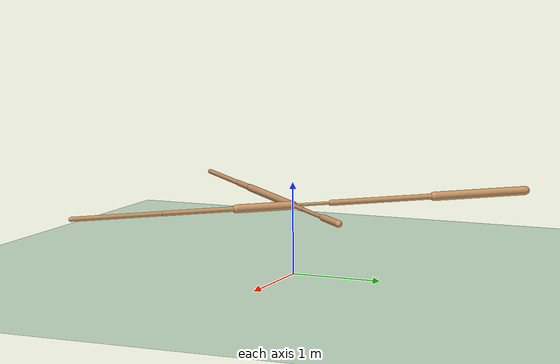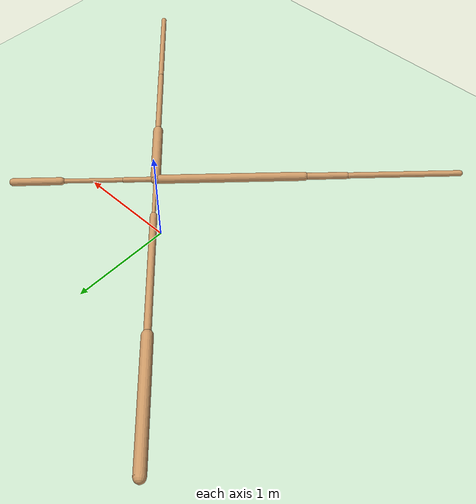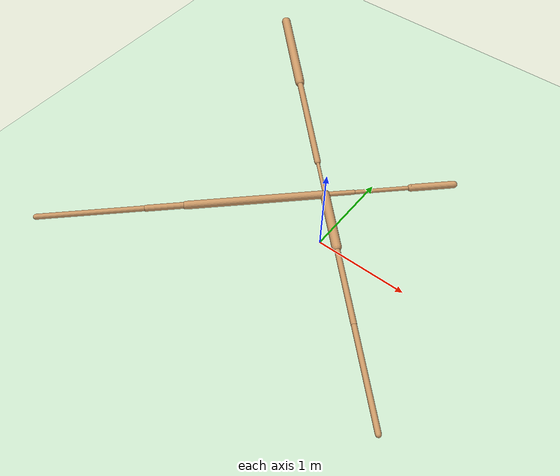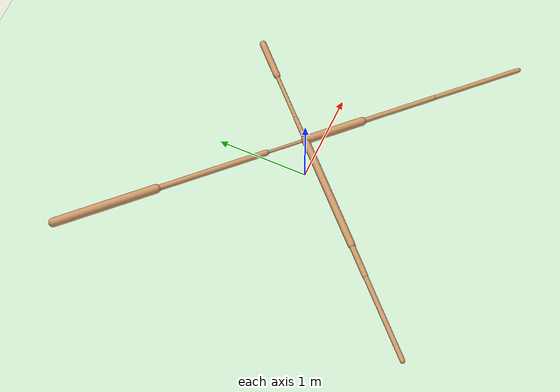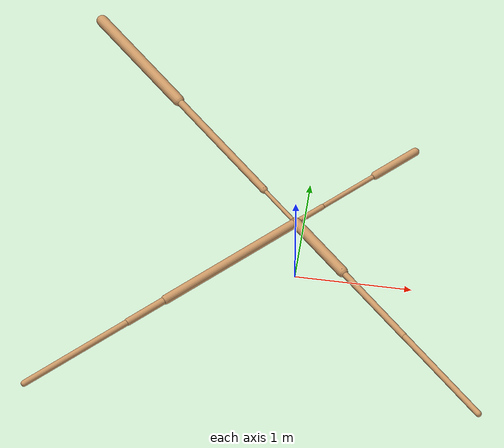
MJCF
<mujoco model="ant">
  <compiler angle="degree" coordinate="local" inertiafromgeom="true" />
  <option integrator="RK4" timestep="0.01" />
  <custom>
    <numeric data="0.0 0.0 0.55 1.0 0.0 0.0 0.0 0.0 1.0 0.0 -1.0 0.0 -1.0 0.0 1.0" name="init_qpos" />
  </custom>
  <default>
    <joint armature="1" damping="1" limited="true" />
    <geom conaffinity="0" condim="3" density="5.0" friction="1 0.5 0.5" margin="0.01" rgba="0.8 0.6 0.4 1" />
  </default>
  <asset>
    <texture builtin="gradient" height="100" rgb1="1 1 1" rgb2="0 0 0" type="skybox" width="100" />
    <texture builtin="flat" height="1278" mark="cross" markrgb="1 1 1" name="texgeom" random="0.01" rgb1="0.8 0.6 0.4" rgb2="0.8 0.6 0.4" type="cube" width="127" />
    <texture builtin="checker" height="100" name="texplane" rgb1="0 0 0" rgb2="0.8 0.8 0.8" type="2d" width="100" />
    <material name="MatPlane" reflectance="0.5" shininess="1" specular="1" texrepeat="60 60" texture="texplane" />
    <material name="geom" texture="texgeom" texuniform="true" />
  </asset>
  <worldbody>
    <light cutoff="100" diffuse="1 1 1" dir="-0 0 -1.3" directional="true" exponent="1" pos="0 0 1.3" specular=".1 .1 .1" />
    <geom conaffinity="1" condim="3" material="MatPlane" name="floor" pos="0 0 0" rgba="0.8 0.9 0.8 1" size="40 40 40" type="plane" />
    <body name="torso" pos="0 0 0.75">
      <camera name="track" mode="trackcom" pos="0 -11 5" xyaxes="1 0 0 0 0.5 1" />
      <geom name="torso_geom" pos="0 0 0" size="0.04481038451194763" type="sphere" />
      <joint armature="0" damping="0" limited="false" margin="0.01" name="root" pos="0 0 0" type="free" />
      <body name="front_left_leg" pos="0 0 0">
        <geom fromto="0 0 0 0.19953401386737823 0.19953401386737823 0" name="aux_1_geom" size="0.023690441623330116" type="capsule" />
        <body name="aux_1" pos="0.19953401386737823 0.19953401386737823 0">
          <joint axis="0 0 1" name="hip_1" pos="0.0 0.0 0.0" range="-30 30" type="hinge" />
          <geom fromto="0 0 0 0.39942634105682373 0.39942634105682373 0" name="left_leg_geom" size="0.020556844770908356" type="capsule" />
          <body name="left_leg_geom_aux" pos="0.39942634105682373 0.39942634105682373 0">
            <joint axis="-1 1 0" name="ankle_1" pos="0.0 0.0 0.0" range="30 70" type="hinge" />
            <geom fromto="0 0 0 0.3022865056991577 0.3022865056991577 0" name="left_ankle_geom" size="0.03550351783633232" type="capsule" />
          </body>
        </body>
      </body>
      <body name="front_right_leg" pos="0 0 0">
        <geom fromto="0 0 0 -0.3110640347003937 0.3110640347003937 0" name="aux_2_geom" size="0.017279665917158127" type="capsule" />
        <body name="aux_2" pos="-0.3110640347003937 0.3110640347003937 0">
          <joint axis="0 0 1" name="hip_2" pos="0.0 0.0 0.0" range="-30 30" type="hinge" />
          <geom fromto="0 0 0 -0.8677225112915039 0.8677225112915039 0" name="right_leg_geom" size="0.03192500025033951" type="capsule" />
          <body name="right_leg_geom_aux" pos="-0.8677225112915039 0.8677225112915039 0">
            <joint axis="1 1 0" name="ankle_2" pos="0.0 0.0 0.0" range="-70 -30" type="hinge" />
            <geom fromto="0 0 0 -0.7999901175498962 0.7999901175498962 0" name="right_ankle_geom" size="0.04984703287482262" type="capsule" />
          </body>
        </body>
      </body>
      <body name="back_leg" pos="0 0 0">
        <geom fromto="0 0 0 -0.9492772221565247 -0.9492772221565247 0" name="aux_3_geom" size="0.040094468742609024" type="capsule" />
        <body name="aux_3" pos="-0.9492772221565247 -0.9492772221565247 0">
          <joint axis="0 0 1" name="hip_3" pos="0.0 0.0 0.0" range="-30 30" type="hinge" />
          <geom fromto="0 0 0 -0.269523948431015 -0.269523948431015 0" name="back_leg_geom" size="0.031501494348049164" type="capsule" />
          <body name="back_leg_geom_aux" pos="-0.269523948431015 -0.269523948431015 0">
            <joint axis="-1 1 0" name="ankle_3" pos="0.0 0.0 0.0" range="-70 -30" type="hinge" />
            <geom fromto="0 0 0 -0.7311989665031433 -0.7311989665031433 0" name="third_ankle_geom" size="0.026896364986896515" type="capsule" />
          </body>
        </body>
      </body>
      <body name="right_back_leg" pos="0 0 0">
        <geom fromto="0 0 0 0.4552609622478485 -0.4552609622478485 0" name="aux_4_geom" size="0.04593001306056976" type="capsule" />
        <body name="aux_4" pos="0.4552609622478485 -0.4552609622478485 0">
          <joint axis="0 0 1" name="hip_4" pos="0.0 0.0 0.0" range="-30 30" type="hinge" />
          <geom fromto="0 0 0 0.5802568197250366 -0.5802568197250366 0" name="rightback_leg_geom" size="0.027447424829006195" type="capsule" />
          <body name="rightback_leg_geom_aux" pos="0.5802568197250366 -0.5802568197250366 0">
            <joint axis="1 1 0" name="ankle_4" pos="0.0 0.0 0.0" range="30 70" type="hinge" />
            <geom fromto="0 0 0 0.688164472579956 -0.688164472579956 0" name="fourth_ankle_geom" size="0.025671927258372307" type="capsule" />
          </body>
        </body>
      </body>
    </body>
  </worldbody>
  <actuator>
    <motor ctrllimited="true" ctrlrange="-1.0 1.0" joint="hip_4" gear="150" />
    <motor ctrllimited="true" ctrlrange="-1.0 1.0" joint="ankle_4" gear="150" />
    <motor ctrllimited="true" ctrlrange="-1.0 1.0" joint="hip_1" gear="150" />
    <motor ctrllimited="true" ctrlrange="-1.0 1.0" joint="ankle_1" gear="150" />
    <motor ctrllimited="true" ctrlrange="-1.0 1.0" joint="hip_2" gear="150" />
    <motor ctrllimited="true" ctrlrange="-1.0 1.0" joint="ankle_2" gear="150" />
    <motor ctrllimited="true" ctrlrange="-1.0 1.0" joint="hip_3" gear="150" />
    <motor ctrllimited="true" ctrlrange="-1.0 1.0" joint="ankle_3" gear="150" />
  </actuator>
</mujoco>
